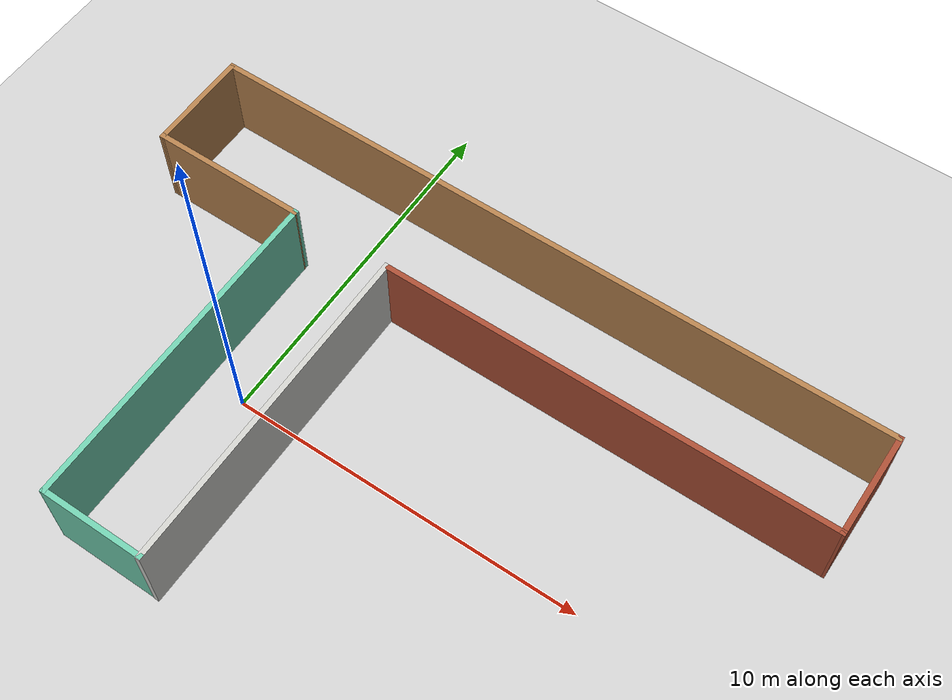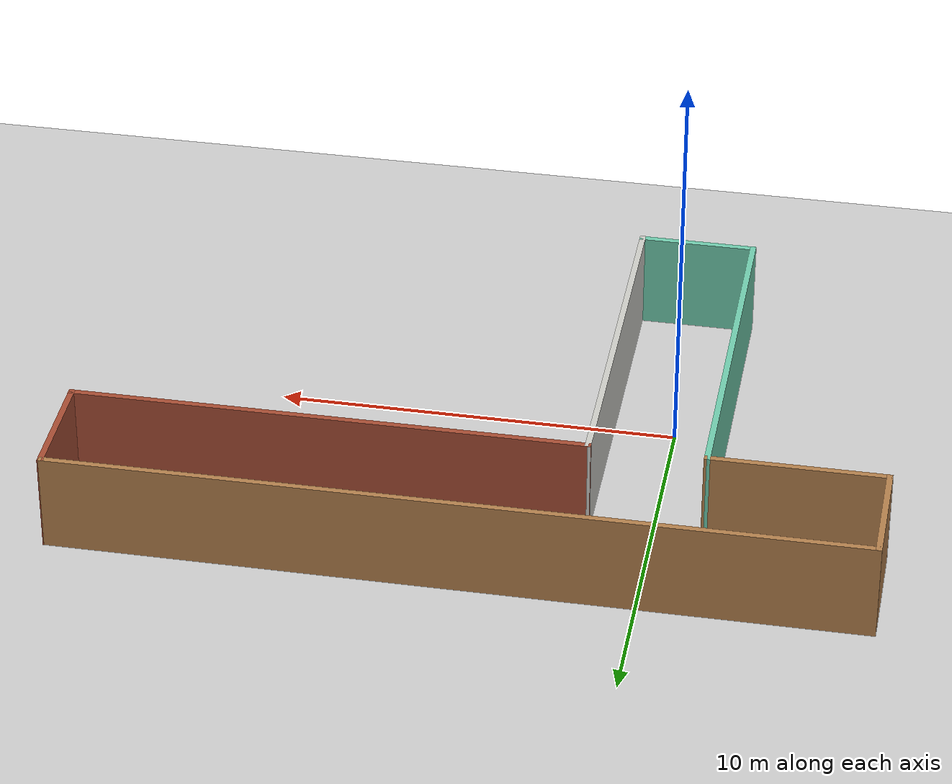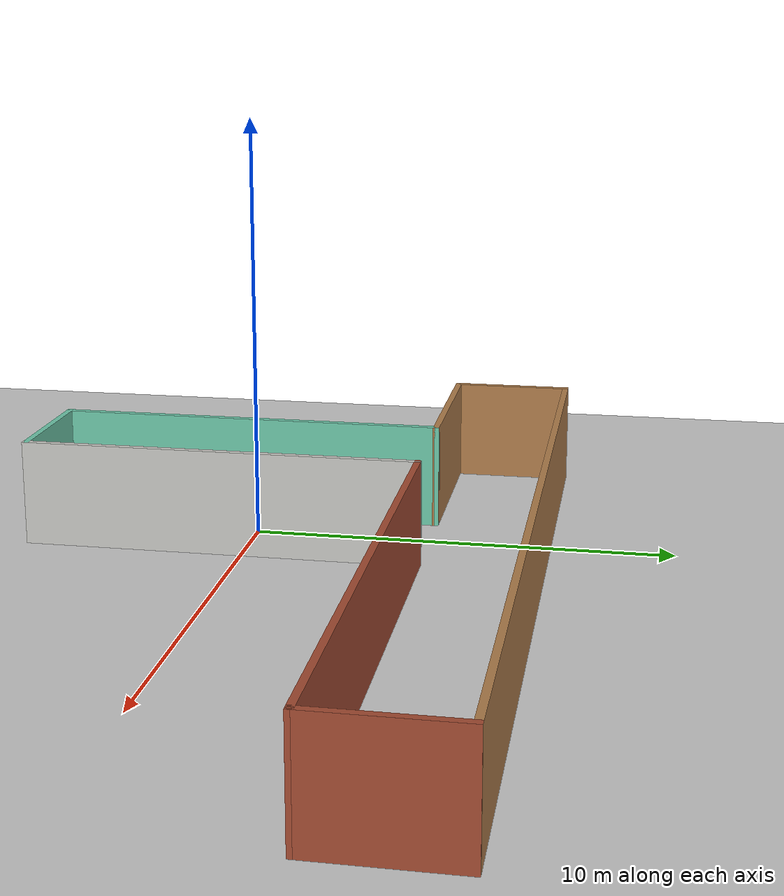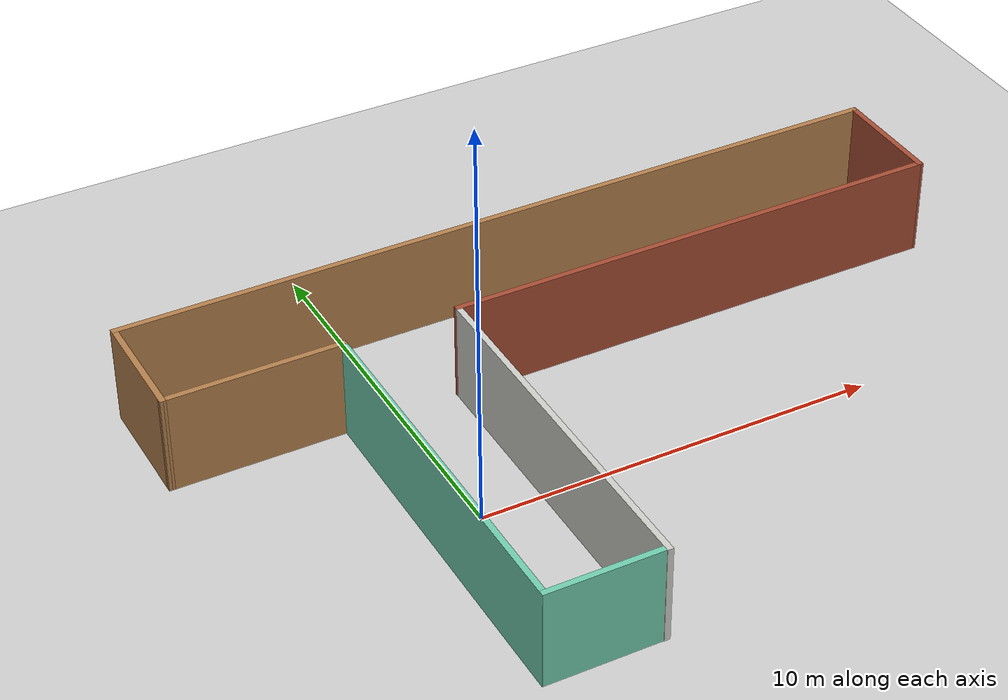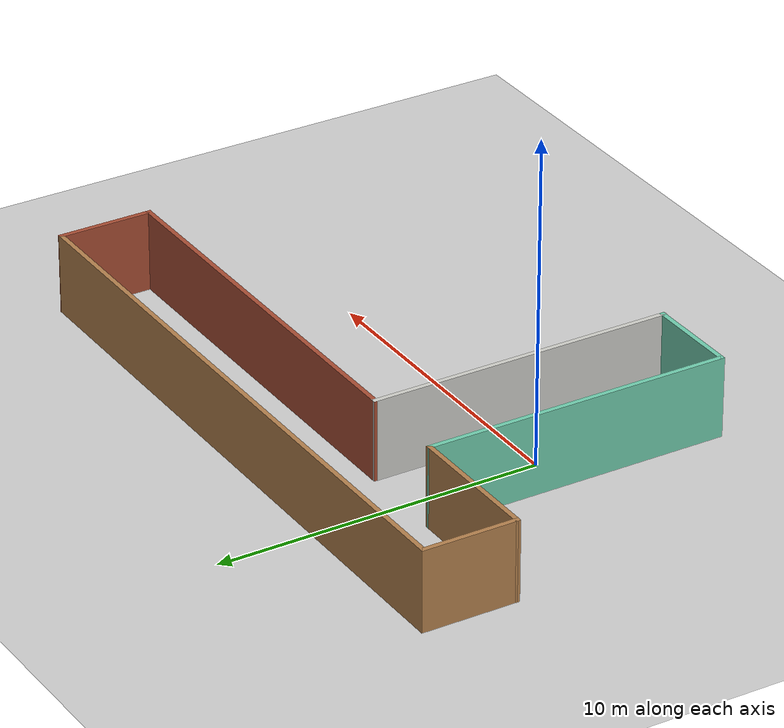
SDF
<sdf version="1.6">
 <world name="default">
  <light name="sun" type="directional">
   <pose>0 0 15 0 -0 0</pose>
   <diffuse>1 1 1 1</diffuse>
   <specular>0.1 0.1 0.1 1</specular>
   <attenuation>
    <range>1000</range>
    <constant>0.9</constant>
    <linear>0.01</linear>
    <quadratic>0.001</quadratic>
   </attenuation>
   <direction>-0.5 0.5 -1</direction>
  </light>
  <model name="ground_plane">
   <static>1</static>
   <link name="link">
    <collision name="collision">
     <geometry><plane><normal>0 0 1</normal><size>100 100</size></plane></geometry>
     <surface><friction><ode><mu>100</mu><mu2>50</mu2></ode></friction></surface>
    </collision>
    <visual name="visual">
     <transparency>1</transparency>
     <cast_shadows>0</cast_shadows>
     <geometry><plane><normal>0 0 1</normal><size>100 100</size></plane></geometry>
     <material>
      <script><uri>file://media/materials/scripts/gazebo.material</uri><name>Gazebo/Grey</name></script>
     </material>
    </visual>
   </link>
  </model>
  <gravity>0 0 -9.8</gravity>
  <magnetic_field>6e-06 2.3e-05 -4.2e-05</magnetic_field>
  <atmosphere type="adiabatic"/>
  <physics name="default_physics" default="0" type="ode">
   <max_step_size>0.001</max_step_size>
   <real_time_factor>1</real_time_factor>
   <real_time_update_rate>1000</real_time_update_rate>
  </physics>
  <scene><ambient>0.4 0.4 0.4 1</ambient><background>0.7 0.7 0.7 1</background><shadows>1</shadows></scene>
  <spherical_coordinates>
   <surface_model>EARTH_WGS84</surface_model>
   <latitude_deg>0</latitude_deg>
   <longitude_deg>0</longitude_deg>
   <elevation>0</elevation>
   <heading_deg>0</heading_deg>
  </spherical_coordinates>
  <model name="homeWorld">
   <pose>4.3577 0.919163 0 0 -0 0</pose>
   <link name="Wall_32">
    <collision name="Wall_32_Collision">
     <geometry><box><size>20 0.15 2.5</size></box></geometry>
     <pose>0 0 1.25 0 -0 0</pose>
    </collision>
    <visual name="Wall_32_Visual">
     <pose>0 0 1.25 0 -0 0</pose>
     <geometry><box><size>20 0.15 2.5</size></box></geometry>
     <material>
      <script><uri>file://media/materials/scripts/gazebo.material</uri><name>Gazebo/Wood</name></script>
      <ambient>1 1 1 1</ambient>
     </material>
    </visual>
    <pose>-0.011518 6.10654 0 0 -0 0</pose>
   </link>
   <link name="Wall_34">
    <collision name="Wall_34_Collision">
     <geometry><box><size>3 0.15 2.5</size></box></geometry>
     <pose>0 0 1.25 0 -0 0</pose>
    </collision>
    <visual name="Wall_34_Visual">
     <pose>0 0 1.25 0 -0 0</pose>
     <geometry><box><size>3 0.15 2.5</size></box></geometry>
     <material>
      <script><uri>file://media/materials/scripts/gazebo.material</uri><name>Gazebo/Grey</name></script>
      <ambient>0.435294 0.796078 0.67451 1</ambient>
     </material>
    </visual>
    <pose>-4.17911 -6.09356 0 0 -0 0</pose>
   </link>
   <link name="Wall_36">
    <collision name="Wall_36_Collision">
     <geometry><box><size>9.5 0.15 2.5</size></box></geometry>
     <pose>0 0 1.25 0 -0 0</pose>
    </collision>
    <visual name="Wall_36_Visual">
     <pose>0 0 1.25 0 -0 0</pose>
     <geometry><box><size>9.5 0.15 2.5</size></box></geometry>
     <material>
      <script><uri>file://media/materials/scripts/gazebo.material</uri><name>Gazebo/Grey</name></script>
      <ambient>0.435294 0.796078 0.67451 1</ambient>
     </material>
    </visual>
    <pose>-5.61046 -1.41791 0 0 0 -1.5708</pose>
   </link>
   <link name="Wall_38">
    <collision name="Wall_38_Collision">
     <geometry><box><size>9.5 0.15 2.5</size></box></geometry>
     <pose>0 0 1.25 0 -0 0</pose>
    </collision>
    <visual name="Wall_38_Visual">
     <pose>0 0 1.25 0 -0 0</pose>
     <geometry><box><size>9.5 0.15 2.5</size></box></geometry>
     <material>
      <script><uri>file://media/materials/scripts/gazebo.material</uri><name>Gazebo/CeilingTiled</name></script>
      <ambient>0.435294 0.796078 0.67451 1</ambient>
     </material>
    </visual>
    <pose>-2.74871 -1.43154 0 0 0 -1.5708</pose>
   </link>
   <link name="Wall_48">
    <collision name="Wall_48_Collision">
     <geometry><box><size>3 0.15 2.5</size></box></geometry>
     <pose>0 0 1.25 0 -0 0</pose>
    </collision>
    <visual name="Wall_48_Visual">
     <pose>0 0 1.25 0 -0 0</pose>
     <geometry><box><size>3 0.15 2.5</size></box></geometry>
     <material>
      <script><uri>file://media/materials/scripts/gazebo.material</uri><name>Gazebo/Bricks</name></script>
      <ambient>1 1 1 1</ambient>
     </material>
    </visual>
    <pose>9.94025 4.68088 0 0 0 -1.5708</pose>
   </link>
   <link name="Wall_50">
    <collision name="Wall_50_Collision">
     <geometry><box><size>3 0.15 2.5</size></box></geometry>
     <pose>0 0 1.25 0 -0 0</pose>
    </collision>
    <visual name="Wall_50_Visual">
     <pose>0 0 1.25 0 -0 0</pose>
     <geometry><box><size>3 0.15 2.5</size></box></geometry>
     <material>
      <script><uri>file://media/materials/scripts/gazebo.material</uri><name>Gazebo/Wood</name></script>
      <ambient>1 1 1 1</ambient>
     </material>
    </visual>
    <pose>-9.94027 4.67908 0 0 0 -1.5708</pose>
   </link>
   <link name="Wall_70">
    <collision name="Wall_70_Collision">
     <geometry><box><size>4.47981 0.15 2.5</size></box></geometry>
     <pose>0 0 1.25 0 -0 0</pose>
    </collision>
    <visual name="Wall_70_Visual">
     <pose>0 0 1.25 0 -0 0</pose>
     <geometry><box><size>4.47981 0.15 2.5</size></box></geometry>
     <material>
      <script><uri>file://media/materials/scripts/gazebo.material</uri><name>Gazebo/Wood</name></script>
      <ambient>1 1 1 1</ambient>
     </material>
    </visual>
    <pose>-7.77537 3.25558 0 0 -0 0.000695</pose>
   </link>
   <link name="Wall_72">
    <collision name="Wall_72_Collision">
     <geometry><box><size>12.839 0.15 2.5</size></box></geometry>
     <pose>0 0 1.25 0 -0 0</pose>
    </collision>
    <visual name="Wall_72_Visual">
     <pose>0 0 1.25 0 -0 0</pose>
     <geometry><box><size>12.839 0.15 2.5</size></box></geometry>
     <material>
      <script><uri>file://media/materials/scripts/gazebo.material</uri><name>Gazebo/Bricks</name></script>
      <ambient>1 1 1 1</ambient>
     </material>
    </visual>
    <pose>3.59577 3.24967 0 0 -0 0.000979</pose>
   </link>
   <static>1</static>
  </model>
 </world>
</sdf>
